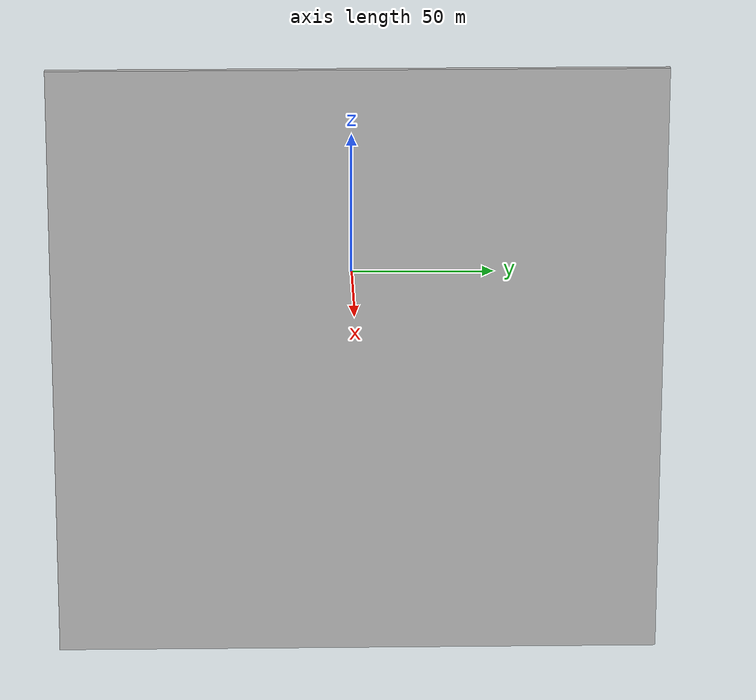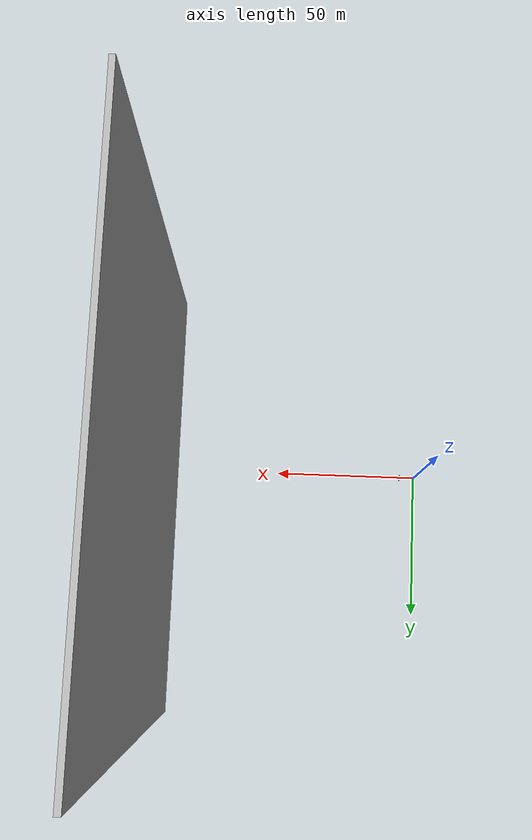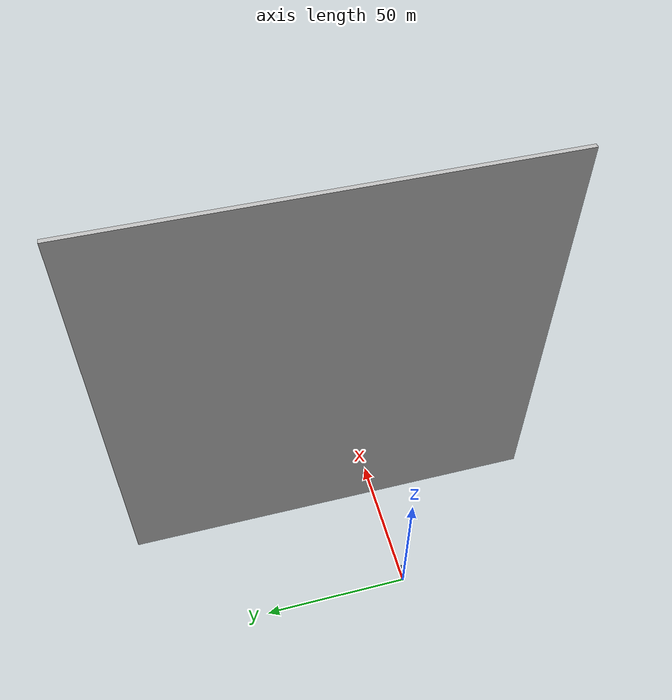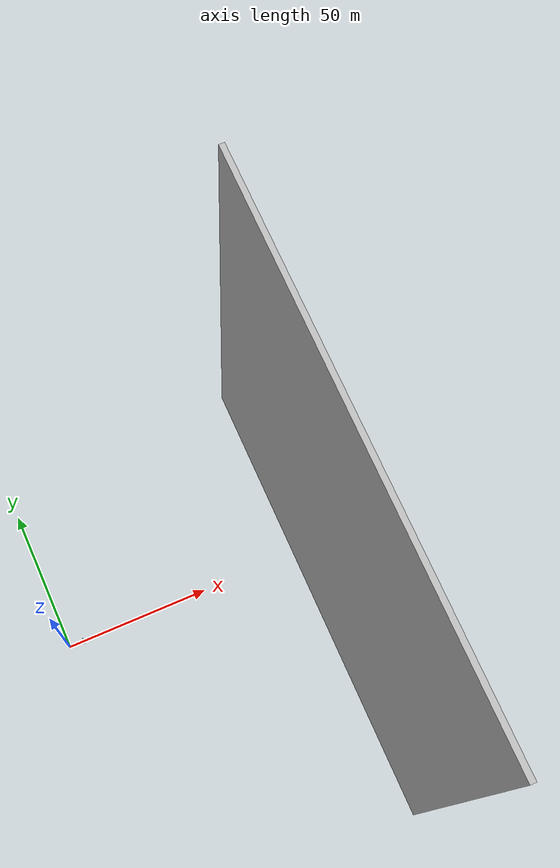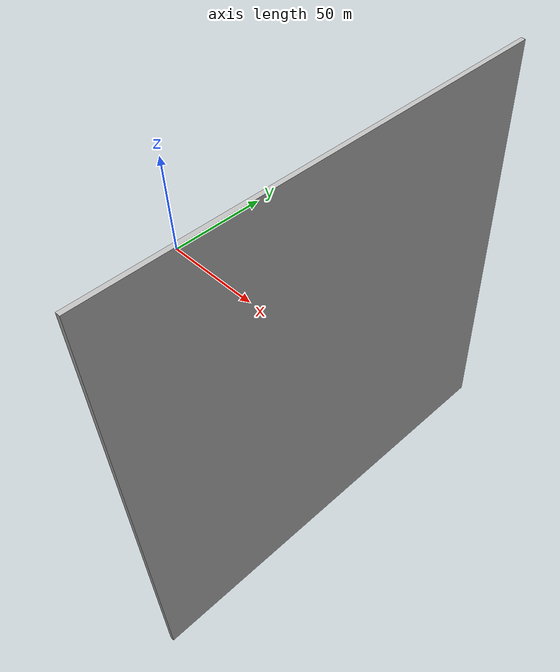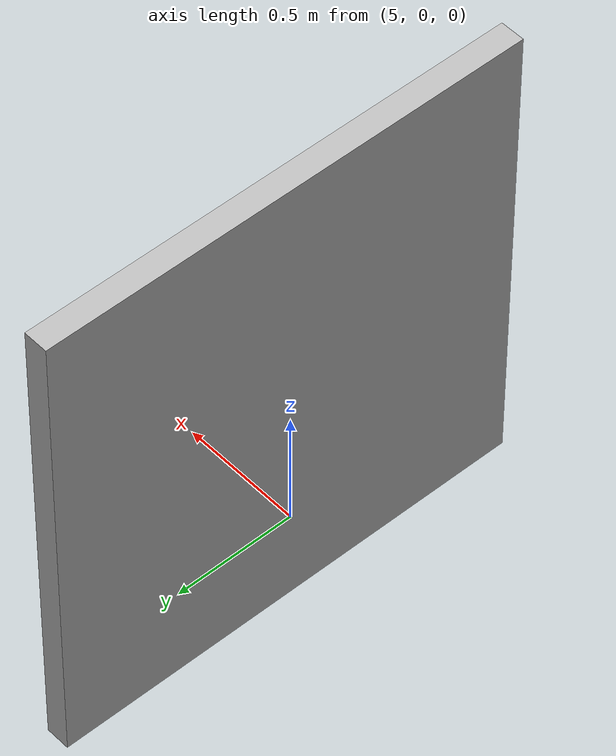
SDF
<?xml version="1.0" ?>
<sdf version="1.4">
  <!-- We use a custom world for the rrbot so that the camera angle is launched correctly -->`

  <world name="default">

    <!-- Global light source -->
    <include>
      <uri>model://sun</uri>
    </include>

   <model name='static_tag'>
      <static>0</static>
      <link name='link'>
      <gravity>0</gravity>
        <visual name='visual'>
          <geometry>
            <mesh>
              <uri>model://tag_positioned/tag_positioned.dae</uri>
            </mesh>
          </geometry>
          <material/>
        </visual>
        <self_collide>0</self_collide>
        <enable_wind>0</enable_wind>
        <kinematic>0</kinematic>
      </link>
      <pose frame=''>5 0 -0.4  0 0 0</pose>
    </model>

   <model name='picture_wall'>
      <static>1</static>
      <link name='link'>
        <visual name='visual'>
          <geometry>
            <mesh>
              <uri>model://picture_wall/picture_wall.dae</uri>
            </mesh>
          </geometry>
          <material/>
        </visual>
        <self_collide>0</self_collide>
        <inertial>
          <inertia>
            <ixx>1</ixx>
            <ixy>0</ixy>
            <ixz>0</ixz>
            <iyy>1</iyy>
            <iyz>0</iyz>
            <izz>1</izz>
          </inertia>
          <mass>1</mass>
        </inertial>
        <enable_wind>0</enable_wind>
        <kinematic>0</kinematic>
      </link>
      <pose frame=''>0 0 0 0 0 0</pose>
    </model>

    <!-- Focus camera on tall pendulum -->
    <gui fullscreen='0'>
      <camera name='user_camera'>
        <pose>4.927360 -4.376610 3.740080 0.000000 0.275643 2.356190</pose>
        <view_controller>orbit</view_controller>
      </camera>
    </gui>

  </world>
</sdf>
